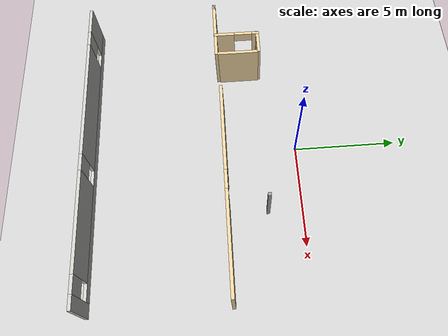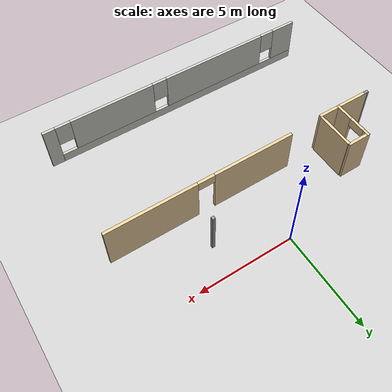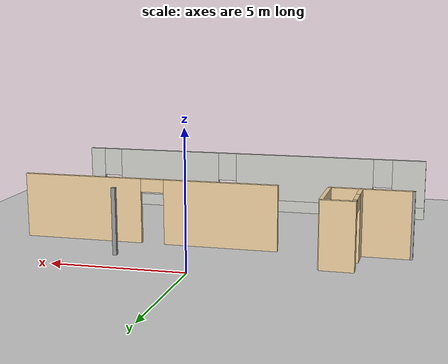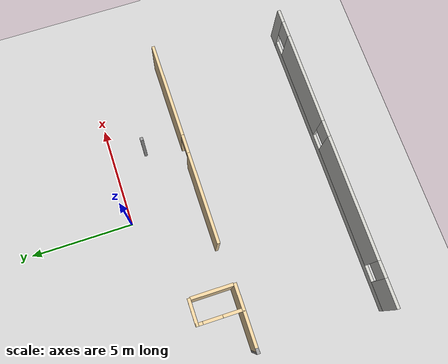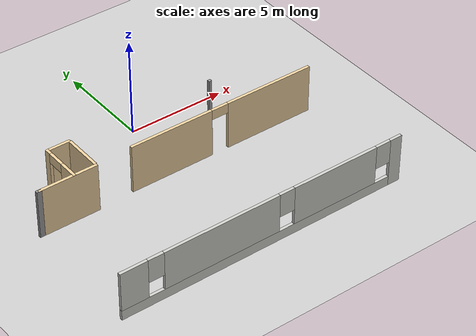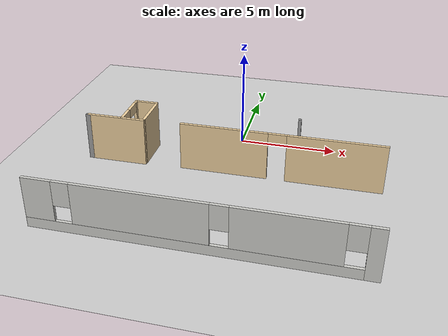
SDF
<sdf version="1.6">
 <world name="default">
  <model name="ground_plane">
   <static>1</static>
   <link name="link">
    <collision name="collision">
     <geometry><plane><normal>0 0 1</normal><size>100 100</size></plane></geometry>
     <surface>
      <contact><collide_bitmask>65535</collide_bitmask></contact>
      <friction><ode><mu>100</mu><mu2>50</mu2></ode></friction>
     </surface>
    </collision>
    <visual name="visual">
     <cast_shadows>0</cast_shadows>
     <geometry><plane><normal>0 0 1</normal><size>100 100</size></plane></geometry>
     <material>
      <script><uri>file://media/materials/scripts/gazebo.material</uri><name>Gazebo/Grey</name></script>
     </material>
    </visual>
   </link>
  </model>
  <model name="AutowayTower">
   <link name="Wall_15">
    <pose>3.50426 2.54039 0 0 -0 1.5708</pose>
    <visual name="Wall_15_Visual_0">
     <pose>-2.8048 0 1.25 0 -0 0</pose>
     <geometry><box><size>4.39039 0.15 2.5</size></box></geometry>
     <material>
      <script><uri>file://media/materials/scripts/gazebo.material</uri><name>Gazebo/Grey</name></script>
      <ambient>0.921569 0.807843 0.615686 1</ambient>
      <shader type="pixel"/>
      <diffuse>0.7 0.7 0.7 1</diffuse>
      <specular>0.01 0.01 0.01 1</specular>
      <emissive>0 0 0 1</emissive>
     </material>
     <meta><layer>0</layer></meta>
    </visual>
    <visual name="Wall_15_Visual_1">
     <pose>2.6452 0 1.25 0 -0 0</pose>
     <geometry><box><size>4.70961 0.15 2.5</size></box></geometry>
     <material>
      <script><uri>file://media/materials/scripts/gazebo.material</uri><name>Gazebo/Grey</name></script>
      <ambient>0.921569 0.807843 0.615686 1</ambient>
      <shader type="pixel"/>
      <diffuse>0.7 0.7 0.7 1</diffuse>
      <specular>0.01 0.01 0.01 1</specular>
      <emissive>0 0 0 1</emissive>
     </material>
     <meta><layer>0</layer></meta>
    </visual>
    <visual name="Wall_15_Visual_2">
     <pose>-0.159607 0 2.25 0 -0 0</pose>
     <geometry><box><size>0.9 0.15 0.5</size></box></geometry>
     <material>
      <script><uri>file://media/materials/scripts/gazebo.material</uri><name>Gazebo/Grey</name></script>
      <ambient>0.921569 0.807843 0.615686 1</ambient>
      <shader type="pixel"/>
      <diffuse>0.7 0.7 0.7 1</diffuse>
      <specular>0.01 0.01 0.01 1</specular>
      <emissive>0 0 0 1</emissive>
     </material>
     <meta><layer>0</layer></meta>
    </visual>
    <collision name="Wall_15_Collision_0">
     <pose>-2.8048 0 1.25 0 -0 0</pose>
     <geometry><box><size>4.39039 0.15 2.5</size></box></geometry>
     <surface>
      <friction>
       <ode><mu>1</mu><mu2>1</mu2><fdir1>0 0 0</fdir1><slip1>0</slip1><slip2>0</slip2></ode>
       <torsional>
        <coefficient>1</coefficient>
        <patch_radius>0</patch_radius>
        <surface_radius>0</surface_radius>
        <use_patch_radius>1</use_patch_radius>
        <ode><slip>0</slip></ode>
       </torsional>
      </friction>
      <bounce><restitution_coefficient>0</restitution_coefficient><threshold>1e+06</threshold></bounce>
      <contact>
       <collide_without_contact>0</collide_without_contact>
       <collide_without_contact_bitmask>1</collide_without_contact_bitmask>
       <collide_bitmask>1</collide_bitmask>
       <ode>
        <soft_cfm>0</soft_cfm>
        <soft_erp>0.2</soft_erp>
        <kp>1e+13</kp>
        <kd>1</kd>
        <max_vel>0.01</max_vel>
        <min_depth>0</min_depth>
       </ode>
       <bullet>
        <split_impulse>1</split_impulse>
        <split_impulse_penetration_threshold>-0.01</split_impulse_penetration_threshold>
        <soft_cfm>0</soft_cfm>
        <soft_erp>0.2</soft_erp>
        <kp>1e+13</kp>
        <kd>1</kd>
       </bullet>
      </contact>
     </surface>
    </collision>
    <collision name="Wall_15_Collision_1">
     <pose>2.6452 0 1.25 0 -0 0</pose>
     <geometry><box><size>4.70961 0.15 2.5</size></box></geometry>
     <surface>
      <friction>
       <ode><mu>1</mu><mu2>1</mu2><fdir1>0 0 0</fdir1><slip1>0</slip1><slip2>0</slip2></ode>
       <torsional>
        <coefficient>1</coefficient>
        <patch_radius>0</patch_radius>
        <surface_radius>0</surface_radius>
        <use_patch_radius>1</use_patch_radius>
        <ode><slip>0</slip></ode>
       </torsional>
      </friction>
      <bounce><restitution_coefficient>0</restitution_coefficient><threshold>1e+06</threshold></bounce>
      <contact>
       <collide_without_contact>0</collide_without_contact>
       <collide_without_contact_bitmask>1</collide_without_contact_bitmask>
       <collide_bitmask>1</collide_bitmask>
       <ode>
        <soft_cfm>0</soft_cfm>
        <soft_erp>0.2</soft_erp>
        <kp>1e+13</kp>
        <kd>1</kd>
        <max_vel>0.01</max_vel>
        <min_depth>0</min_depth>
       </ode>
       <bullet>
        <split_impulse>1</split_impulse>
        <split_impulse_penetration_threshold>-0.01</split_impulse_penetration_threshold>
        <soft_cfm>0</soft_cfm>
        <soft_erp>0.2</soft_erp>
        <kp>1e+13</kp>
        <kd>1</kd>
       </bullet>
      </contact>
     </surface>
    </collision>
    <collision name="Wall_15_Collision_2">
     <pose>-0.159607 0 2.25 0 -0 0</pose>
     <geometry><box><size>0.9 0.15 0.5</size></box></geometry>
     <surface>
      <friction>
       <ode><mu>1</mu><mu2>1</mu2><fdir1>0 0 0</fdir1><slip1>0</slip1><slip2>0</slip2></ode>
       <torsional>
        <coefficient>1</coefficient>
        <patch_radius>0</patch_radius>
        <surface_radius>0</surface_radius>
        <use_patch_radius>1</use_patch_radius>
        <ode><slip>0</slip></ode>
       </torsional>
      </friction>
      <bounce><restitution_coefficient>0</restitution_coefficient><threshold>1e+06</threshold></bounce>
      <contact>
       <collide_without_contact>0</collide_without_contact>
       <collide_without_contact_bitmask>1</collide_without_contact_bitmask>
       <collide_bitmask>1</collide_bitmask>
       <ode>
        <soft_cfm>0</soft_cfm>
        <soft_erp>0.2</soft_erp>
        <kp>1e+13</kp>
        <kd>1</kd>
        <max_vel>0.01</max_vel>
        <min_depth>0</min_depth>
       </ode>
       <bullet>
        <split_impulse>1</split_impulse>
        <split_impulse_penetration_threshold>-0.01</split_impulse_penetration_threshold>
        <soft_cfm>0</soft_cfm>
        <soft_erp>0.2</soft_erp>
        <kp>1e+13</kp>
        <kd>1</kd>
       </bullet>
      </contact>
     </surface>
    </collision>
   </link>
   <link name="Wall_2">
    <pose>9.93714 0.003689 0 0 0 -1.5708</pose>
    <visual name="Wall_2_Visual_0">
     <pose>-7.17614 0 1.25 0 -0 0</pose>
     <geometry><box><size>0.647727 0.15 2.5</size></box></geometry>
     <material>
      <script><uri>file://media/materials/scripts/gazebo.material</uri><name>Gazebo/CeilingTiled</name></script>
      <ambient>1 1 1 1</ambient>
      <shader type="pixel"/>
      <diffuse>1 1 1 1</diffuse>
      <specular>0 0 0 1</specular>
      <emissive>0 0 0 1</emissive>
     </material>
     <meta><layer>0</layer></meta>
    </visual>
    <visual name="Wall_2_Visual_1">
     <pose>0.323864 0 0.25 0 -0 0</pose>
     <geometry><box><size>14.3523 0.15 0.5</size></box></geometry>
     <material>
      <script><uri>file://media/materials/scripts/gazebo.material</uri><name>Gazebo/CeilingTiled</name></script>
      <ambient>1 1 1 1</ambient>
      <shader type="pixel"/>
      <diffuse>1 1 1 1</diffuse>
      <specular>0 0 0 1</specular>
      <emissive>0 0 0 1</emissive>
     </material>
     <meta><layer>0</layer></meta>
    </visual>
    <visual name="Wall_2_Visual_2">
     <pose>-3.76755 0 1.5 0 -0 0</pose>
     <geometry><box><size>4.56945 0.15 2</size></box></geometry>
     <material>
      <script><uri>file://media/materials/scripts/gazebo.material</uri><name>Gazebo/CeilingTiled</name></script>
      <ambient>1 1 1 1</ambient>
      <shader type="pixel"/>
      <diffuse>1 1 1 1</diffuse>
      <specular>0 0 0 1</specular>
      <emissive>0 0 0 1</emissive>
     </material>
     <meta><layer>0</layer></meta>
    </visual>
    <visual name="Wall_2_Visual_3">
     <pose>2.31899 0 1.5 0 -0 0</pose>
     <geometry><box><size>6.00363 0.15 2</size></box></geometry>
     <material>
      <script><uri>file://media/materials/scripts/gazebo.material</uri><name>Gazebo/CeilingTiled</name></script>
      <ambient>1 1 1 1</ambient>
      <shader type="pixel"/>
      <diffuse>1 1 1 1</diffuse>
      <specular>0 0 0 1</specular>
      <emissive>0 0 0 1</emissive>
     </material>
     <meta><layer>0</layer></meta>
    </visual>
    <visual name="Wall_2_Visual_4">
     <pose>6.81041 0 1.5 0 -0 0</pose>
     <geometry><box><size>1.37919 0.15 2</size></box></geometry>
     <material>
      <script><uri>file://media/materials/scripts/gazebo.material</uri><name>Gazebo/CeilingTiled</name></script>
      <ambient>1 1 1 1</ambient>
      <shader type="pixel"/>
      <diffuse>1 1 1 1</diffuse>
      <specular>0 0 0 1</specular>
      <emissive>0 0 0 1</emissive>
     </material>
     <meta><layer>0</layer></meta>
    </visual>
    <visual name="Wall_2_Visual_5">
     <pose>-6.45227 0 1.9 0 -0 0</pose>
     <geometry><box><size>0.8 0.15 1.2</size></box></geometry>
     <material>
      <script><uri>file://media/materials/scripts/gazebo.material</uri><name>Gazebo/CeilingTiled</name></script>
      <ambient>1 1 1 1</ambient>
      <shader type="pixel"/>
      <diffuse>1 1 1 1</diffuse>
      <specular>0 0 0 1</specular>
      <emissive>0 0 0 1</emissive>
     </material>
     <meta><layer>0</layer></meta>
    </visual>
    <visual name="Wall_2_Visual_6">
     <pose>-1.08282 0 1.9 0 -0 0</pose>
     <geometry><box><size>0.8 0.15 1.2</size></box></geometry>
     <material>
      <script><uri>file://media/materials/scripts/gazebo.material</uri><name>Gazebo/CeilingTiled</name></script>
      <ambient>1 1 1 1</ambient>
      <shader type="pixel"/>
      <diffuse>1 1 1 1</diffuse>
      <specular>0 0 0 1</specular>
      <emissive>0 0 0 1</emissive>
     </material>
     <meta><layer>0</layer></meta>
    </visual>
    <visual name="Wall_2_Visual_7">
     <pose>5.72081 0 1.9 0 -0 0</pose>
     <geometry><box><size>0.8 0.15 1.2</size></box></geometry>
     <material>
      <script><uri>file://media/materials/scripts/gazebo.material</uri><name>Gazebo/CeilingTiled</name></script>
      <ambient>1 1 1 1</ambient>
      <shader type="pixel"/>
      <diffuse>1 1 1 1</diffuse>
      <specular>0 0 0 1</specular>
      <emissive>0 0 0 1</emissive>
     </material>
     <meta><layer>0</layer></meta>
    </visual>
    <collision name="Wall_2_Collision_0">
     <pose>-7.17614 0 1.25 0 -0 0</pose>
     <geometry><box><size>0.647727 0.15 2.5</size></box></geometry>
     <surface>
      <friction>
       <ode><mu>1</mu><mu2>1</mu2><fdir1>0 0 0</fdir1><slip1>0</slip1><slip2>0</slip2></ode>
       <torsional>
        <coefficient>1</coefficient>
        <patch_radius>0</patch_radius>
        <surface_radius>0</surface_radius>
        <use_patch_radius>1</use_patch_radius>
        <ode><slip>0</slip></ode>
       </torsional>
      </friction>
      <bounce><restitution_coefficient>0</restitution_coefficient><threshold>1e+06</threshold></bounce>
      <contact>
       <collide_without_contact>0</collide_without_contact>
       <collide_without_contact_bitmask>1</collide_without_contact_bitmask>
       <collide_bitmask>1</collide_bitmask>
       <ode>
        <soft_cfm>0</soft_cfm>
        <soft_erp>0.2</soft_erp>
        <kp>1e+13</kp>
        <kd>1</kd>
        <max_vel>0.01</max_vel>
        <min_depth>0</min_depth>
       </ode>
       <bullet>
        <split_impulse>1</split_impulse>
        <split_impulse_penetration_threshold>-0.01</split_impulse_penetration_threshold>
        <soft_cfm>0</soft_cfm>
        <soft_erp>0.2</soft_erp>
        <kp>1e+13</kp>
        <kd>1</kd>
       </bullet>
      </contact>
     </surface>
    </collision>
    <collision name="Wall_2_Collision_1">
     <pose>0.323864 0 0.25 0 -0 0</pose>
     <geometry><box><size>14.3523 0.15 0.5</size></box></geometry>
     <surface>
      <friction>
       <ode><mu>1</mu><mu2>1</mu2><fdir1>0 0 0</fdir1><slip1>0</slip1><slip2>0</slip2></ode>
       <torsional>
        <coefficient>1</coefficient>
        <patch_radius>0</patch_radius>
        <surface_radius>0</surface_radius>
        <use_patch_radius>1</use_patch_radius>
        <ode><slip>0</slip></ode>
       </torsional>
      </friction>
      <bounce><restitution_coefficient>0</restitution_coefficient><threshold>1e+06</threshold></bounce>
      <contact>
       <collide_without_contact>0</collide_without_contact>
       <collide_without_contact_bitmask>1</collide_without_contact_bitmask>
       <collide_bitmask>1</collide_bitmask>
       <ode>
        <soft_cfm>0</soft_cfm>
        <soft_erp>0.2</soft_erp>
        <kp>1e+13</kp>
        <kd>1</kd>
        <max_vel>0.01</max_vel>
        <min_depth>0</min_depth>
       </ode>
       <bullet>
        <split_impulse>1</split_impulse>
        <split_impulse_penetration_threshold>-0.01</split_impulse_penetration_threshold>
        <soft_cfm>0</soft_cfm>
        <soft_erp>0.2</soft_erp>
        <kp>1e+13</kp>
        <kd>1</kd>
       </bullet>
      </contact>
     </surface>
    </collision>
    <collision name="Wall_2_Collision_2">
     <pose>-3.76755 0 1.5 0 -0 0</pose>
     <geometry><box><size>4.56945 0.15 2</size></box></geometry>
     <surface>
      <friction>
       <ode><mu>1</mu><mu2>1</mu2><fdir1>0 0 0</fdir1><slip1>0</slip1><slip2>0</slip2></ode>
       <torsional>
        <coefficient>1</coefficient>
        <patch_radius>0</patch_radius>
        <surface_radius>0</surface_radius>
        <use_patch_radius>1</use_patch_radius>
        <ode><slip>0</slip></ode>
       </torsional>
      </friction>
      <bounce><restitution_coefficient>0</restitution_coefficient><threshold>1e+06</threshold></bounce>
      <contact>
       <collide_without_contact>0</collide_without_contact>
       <collide_without_contact_bitmask>1</collide_without_contact_bitmask>
       <collide_bitmask>1</collide_bitmask>
       <ode>
        <soft_cfm>0</soft_cfm>
        <soft_erp>0.2</soft_erp>
        <kp>1e+13</kp>
        <kd>1</kd>
        <max_vel>0.01</max_vel>
        <min_depth>0</min_depth>
       </ode>
       <bullet>
        <split_impulse>1</split_impulse>
        <split_impulse_penetration_threshold>-0.01</split_impulse_penetration_threshold>
        <soft_cfm>0</soft_cfm>
        <soft_erp>0.2</soft_erp>
        <kp>1e+13</kp>
        <kd>1</kd>
       </bullet>
      </contact>
     </surface>
    </collision>
    <collision name="Wall_2_Collision_3">
     <pose>2.31899 0 1.5 0 -0 0</pose>
     <geometry><box><size>6.00363 0.15 2</size></box></geometry>
     <surface>
      <friction>
       <ode><mu>1</mu><mu2>1</mu2><fdir1>0 0 0</fdir1><slip1>0</slip1><slip2>0</slip2></ode>
       <torsional>
        <coefficient>1</coefficient>
        <patch_radius>0</patch_radius>
        <surface_radius>0</surface_radius>
        <use_patch_radius>1</use_patch_radius>
        <ode><slip>0</slip></ode>
       </torsional>
      </friction>
      <bounce><restitution_coefficient>0</restitution_coefficient><threshold>1e+06</threshold></bounce>
      <contact>
       <collide_without_contact>0</collide_without_contact>
       <collide_without_contact_bitmask>1</collide_without_contact_bitmask>
       <collide_bitmask>1</collide_bitmask>
       <ode>
        <soft_cfm>0</soft_cfm>
        <soft_erp>0.2</soft_erp>
        <kp>1e+13</kp>
        <kd>1</kd>
        <max_vel>0.01</max_vel>
        <min_depth>0</min_depth>
       </ode>
       <bullet>
        <split_impulse>1</split_impulse>
        <split_impulse_penetration_threshold>-0.01</split_impulse_penetration_threshold>
        <soft_cfm>0</soft_cfm>
        <soft_erp>0.2</soft_erp>
        <kp>1e+13</kp>
        <kd>1</kd>
       </bullet>
      </contact>
     </surface>
    </collision>
    <collision name="Wall_2_Collision_4">
     <pose>6.81041 0 1.5 0 -0 0</pose>
     <geometry><box><size>1.37919 0.15 2</size></box></geometry>
     <surface>
      <friction>
       <ode><mu>1</mu><mu2>1</mu2><fdir1>0 0 0</fdir1><slip1>0</slip1><slip2>0</slip2></ode>
       <torsional>
        <coefficient>1</coefficient>
        <patch_radius>0</patch_radius>
        <surface_radius>0</surface_radius>
        <use_patch_radius>1</use_patch_radius>
        <ode><slip>0</slip></ode>
       </torsional>
      </friction>
      <bounce><restitution_coefficient>0</restitution_coefficient><threshold>1e+06</threshold></bounce>
      <contact>
       <collide_without_contact>0</collide_without_contact>
       <collide_without_contact_bitmask>1</collide_without_contact_bitmask>
       <collide_bitmask>1</collide_bitmask>
       <ode>
        <soft_cfm>0</soft_cfm>
        <soft_erp>0.2</soft_erp>
        <kp>1e+13</kp>
        <kd>1</kd>
        <max_vel>0.01</max_vel>
        <min_depth>0</min_depth>
       </ode>
       <bullet>
        <split_impulse>1</split_impulse>
        <split_impulse_penetration_threshold>-0.01</split_impulse_penetration_threshold>
        <soft_cfm>0</soft_cfm>
        <soft_erp>0.2</soft_erp>
        <kp>1e+13</kp>
        <kd>1</kd>
       </bullet>
      </contact>
     </surface>
    </collision>
    <collision name="Wall_2_Collision_5">
     <pose>-6.45227 0 1.9 0 -0 0</pose>
     <geometry><box><size>0.8 0.15 1.2</size></box></geometry>
     <surface>
      <friction>
       <ode><mu>1</mu><mu2>1</mu2><fdir1>0 0 0</fdir1><slip1>0</slip1><slip2>0</slip2></ode>
       <torsional>
        <coefficient>1</coefficient>
        <patch_radius>0</patch_radius>
        <surface_radius>0</surface_radius>
        <use_patch_radius>1</use_patch_radius>
        <ode><slip>0</slip></ode>
       </torsional>
      </friction>
      <bounce><restitution_coefficient>0</restitution_coefficient><threshold>1e+06</threshold></bounce>
      <contact>
       <collide_without_contact>0</collide_without_contact>
       <collide_without_contact_bitmask>1</collide_without_contact_bitmask>
       <collide_bitmask>1</collide_bitmask>
       <ode>
        <soft_cfm>0</soft_cfm>
        <soft_erp>0.2</soft_erp>
        <kp>1e+13</kp>
        <kd>1</kd>
        <max_vel>0.01</max_vel>
        <min_depth>0</min_depth>
       </ode>
       <bullet>
        <split_impulse>1</split_impulse>
        <split_impulse_penetration_threshold>-0.01</split_impulse_penetration_threshold>
        <soft_cfm>0</soft_cfm>
        <soft_erp>0.2</soft_erp>
        <kp>1e+13</kp>
        <kd>1</kd>
       </bullet>
      </contact>
     </surface>
    </collision>
    <collision name="Wall_2_Collision_6">
     <pose>-1.08282 0 1.9 0 -0 0</pose>
     <geometry><box><size>0.8 0.15 1.2</size></box></geometry>
     <surface>
      <friction>
       <ode><mu>1</mu><mu2>1</mu2><fdir1>0 0 0</fdir1><slip1>0</slip1><slip2>0</slip2></ode>
       <torsional>
        <coefficient>1</coefficient>
        <patch_radius>0</patch_radius>
        <surface_radius>0</surface_radius>
        <use_patch_radius>1</use_patch_radius>
        <ode><slip>0</slip></ode>
       </torsional>
      </friction>
      <bounce><restitution_coefficient>0</restitution_coefficient><threshold>1e+06</threshold></bounce>
      <contact>
       <collide_without_contact>0</collide_without_contact>
       <collide_without_contact_bitmask>1</collide_without_contact_bitmask>
       <collide_bitmask>1</collide_bitmask>
       <ode>
        <soft_cfm>0</soft_cfm>
        <soft_erp>0.2</soft_erp>
        <kp>1e+13</kp>
        <kd>1</kd>
        <max_vel>0.01</max_vel>
        <min_depth>0</min_depth>
       </ode>
       <bullet>
        <split_impulse>1</split_impulse>
        <split_impulse_penetration_threshold>-0.01</split_impulse_penetration_threshold>
        <soft_cfm>0</soft_cfm>
        <soft_erp>0.2</soft_erp>
        <kp>1e+13</kp>
        <kd>1</kd>
       </bullet>
      </contact>
     </surface>
    </collision>
    <collision name="Wall_2_Collision_7">
     <pose>5.72081 0 1.9 0 -0 0</pose>
     <geometry><box><size>0.8 0.15 1.2</size></box></geometry>
     <surface>
      <friction>
       <ode><mu>1</mu><mu2>1</mu2><fdir1>0 0 0</fdir1><slip1>0</slip1><slip2>0</slip2></ode>
       <torsional>
        <coefficient>1</coefficient>
        <patch_radius>0</patch_radius>
        <surface_radius>0</surface_radius>
        <use_patch_radius>1</use_patch_radius>
        <ode><slip>0</slip></ode>
       </torsional>
      </friction>
      <bounce><restitution_coefficient>0</restitution_coefficient><threshold>1e+06</threshold></bounce>
      <contact>
       <collide_without_contact>0</collide_without_contact>
       <collide_without_contact_bitmask>1</collide_without_contact_bitmask>
       <collide_bitmask>1</collide_bitmask>
       <ode>
        <soft_cfm>0</soft_cfm>
        <soft_erp>0.2</soft_erp>
        <kp>1e+13</kp>
        <kd>1</kd>
        <max_vel>0.01</max_vel>
        <min_depth>0</min_depth>
       </ode>
       <bullet>
        <split_impulse>1</split_impulse>
        <split_impulse_penetration_threshold>-0.01</split_impulse_penetration_threshold>
        <soft_cfm>0</soft_cfm>
        <soft_erp>0.2</soft_erp>
        <kp>1e+13</kp>
        <kd>1</kd>
       </bullet>
      </contact>
     </surface>
    </collision>
   </link>
   <link name="Wall_37">
    <pose>1.64681 3.22085 0 0 -0 0</pose>
    <visual name="Wall_37_Visual">
     <pose>0 0 1.25 0 -0 0</pose>
     <geometry><box><size>0.15 0.15 2.5</size></box></geometry>
     <material>
      <script><uri>file://media/materials/scripts/gazebo.material</uri><name>Gazebo/Grey</name></script>
      <ambient>1 1 1 1</ambient>
      <shader type="pixel"/>
      <diffuse>0.7 0.7 0.7 1</diffuse>
      <specular>0.01 0.01 0.01 1</specular>
      <emissive>0 0 0 1</emissive>
     </material>
     <meta><layer>0</layer></meta>
    </visual>
    <collision name="Wall_37_Collision">
     <pose>0 0 1.25 0 -0 0</pose>
     <geometry><box><size>0.15 0.15 2.5</size></box></geometry>
     <surface>
      <friction>
       <ode><mu>1</mu><mu2>1</mu2><fdir1>0 0 0</fdir1><slip1>0</slip1><slip2>0</slip2></ode>
       <torsional>
        <coefficient>1</coefficient>
        <patch_radius>0</patch_radius>
        <surface_radius>0</surface_radius>
        <use_patch_radius>1</use_patch_radius>
        <ode><slip>0</slip></ode>
       </torsional>
      </friction>
      <bounce><restitution_coefficient>0</restitution_coefficient><threshold>1e+06</threshold></bounce>
      <contact>
       <collide_without_contact>0</collide_without_contact>
       <collide_without_contact_bitmask>1</collide_without_contact_bitmask>
       <collide_bitmask>1</collide_bitmask>
       <ode>
        <soft_cfm>0</soft_cfm>
        <soft_erp>0.2</soft_erp>
        <kp>1e+13</kp>
        <kd>1</kd>
        <max_vel>0.01</max_vel>
        <min_depth>0</min_depth>
       </ode>
       <bullet>
        <split_impulse>1</split_impulse>
        <split_impulse_penetration_threshold>-0.01</split_impulse_penetration_threshold>
        <soft_cfm>0</soft_cfm>
        <soft_erp>0.2</soft_erp>
        <kp>1e+13</kp>
        <kd>1</kd>
       </bullet>
      </contact>
     </surface>
    </collision>
   </link>
   <link name="Wall_38">
    <pose>1.64681 3.22085 0 0 -0 0</pose>
    <visual name="Wall_38_Visual">
     <pose>0 0 1.25 0 -0 0</pose>
     <geometry><box><size>0.15 0.15 2.5</size></box></geometry>
     <material>
      <script><uri>file://media/materials/scripts/gazebo.material</uri><name>Gazebo/Grey</name></script>
      <ambient>1 1 1 1</ambient>
      <shader type="pixel"/>
      <diffuse>0.7 0.7 0.7 1</diffuse>
      <specular>0.01 0.01 0.01 1</specular>
      <emissive>0 0 0 1</emissive>
     </material>
     <meta><layer>0</layer></meta>
    </visual>
    <collision name="Wall_38_Collision">
     <pose>0 0 1.25 0 -0 0</pose>
     <geometry><box><size>0.15 0.15 2.5</size></box></geometry>
     <surface>
      <friction>
       <ode><mu>1</mu><mu2>1</mu2><fdir1>0 0 0</fdir1><slip1>0</slip1><slip2>0</slip2></ode>
       <torsional>
        <coefficient>1</coefficient>
        <patch_radius>0</patch_radius>
        <surface_radius>0</surface_radius>
        <use_patch_radius>1</use_patch_radius>
        <ode><slip>0</slip></ode>
       </torsional>
      </friction>
      <bounce><restitution_coefficient>0</restitution_coefficient><threshold>1e+06</threshold></bounce>
      <contact>
       <collide_without_contact>0</collide_without_contact>
       <collide_without_contact_bitmask>1</collide_without_contact_bitmask>
       <collide_bitmask>1</collide_bitmask>
       <ode>
        <soft_cfm>0</soft_cfm>
        <soft_erp>0.2</soft_erp>
        <kp>1e+13</kp>
        <kd>1</kd>
        <max_vel>0.01</max_vel>
        <min_depth>0</min_depth>
       </ode>
       <bullet>
        <split_impulse>1</split_impulse>
        <split_impulse_penetration_threshold>-0.01</split_impulse_penetration_threshold>
        <soft_cfm>0</soft_cfm>
        <soft_erp>0.2</soft_erp>
        <kp>1e+13</kp>
        <kd>1</kd>
       </bullet>
      </contact>
     </surface>
    </collision>
   </link>
   <link name="Wall_58_clone_0">
    <pose>2.55041 -4.3308 0 0 -0 3.1408</pose>
    <inertial>
     <mass>1</mass>
     <inertia><ixx>1</ixx><ixy>0</ixy><ixz>0</ixz><iyy>1</iyy><iyz>0</iyz><izz>1</izz></inertia>
    </inertial>
    <visual name="Wall_58_Visual">
     <pose>0 0 1.25 0 -0 0</pose>
     <geometry><box><size>2 0.15 2.5</size></box></geometry>
     <material>
      <script><uri>file://media/materials/scripts/gazebo.material</uri><name>Gazebo/Grey</name></script>
      <ambient>0.922 0.808 0.616 1</ambient>
      <shader type="pixel"><normal_map>__default__</normal_map></shader>
      <diffuse>0.7 0.7 0.7 1</diffuse>
      <specular>0.01 0.01 0.01 1</specular>
      <emissive>0 0 0 1</emissive>
     </material>
     <meta><layer>0</layer></meta>
    </visual>
    <collision name="Wall_58_Collision">
     <pose>0 0 1.25 0 -0 0</pose>
     <geometry><box><size>2 0.15 2.5</size></box></geometry>
     <surface>
      <friction>
       <ode><mu>1</mu><mu2>1</mu2><fdir1>0 0 0</fdir1><slip1>0</slip1><slip2>0</slip2></ode>
       <torsional>
        <coefficient>1</coefficient>
        <patch_radius>0</patch_radius>
        <surface_radius>0</surface_radius>
        <use_patch_radius>1</use_patch_radius>
        <ode><slip>0</slip></ode>
       </torsional>
      </friction>
      <bounce><restitution_coefficient>0</restitution_coefficient><threshold>1e+06</threshold></bounce>
      <contact>
       <collide_without_contact>0</collide_without_contact>
       <collide_without_contact_bitmask>1</collide_without_contact_bitmask>
       <collide_bitmask>1</collide_bitmask>
       <ode>
        <soft_cfm>0</soft_cfm>
        <soft_erp>0.2</soft_erp>
        <kp>1e+13</kp>
        <kd>1</kd>
        <max_vel>0.01</max_vel>
        <min_depth>0</min_depth>
       </ode>
       <bullet>
        <split_impulse>1</split_impulse>
        <split_impulse_penetration_threshold>-0.01</split_impulse_penetration_threshold>
        <soft_cfm>0</soft_cfm>
        <soft_erp>0.2</soft_erp>
        <kp>1e+13</kp>
        <kd>1</kd>
       </bullet>
      </contact>
     </surface>
    </collision>
   </link>
   <link name="Wall_60">
    <pose>3.6249 -5.79113 0 0 0 -1.5708</pose>
    <visual name="Wall_60_Visual">
     <pose>0 0 1.25 0 -0 0</pose>
     <geometry><box><size>3 0.15 2.5</size></box></geometry>
     <material>
      <script><uri>file://media/materials/scripts/gazebo.material</uri><name>Gazebo/Grey</name></script>
      <ambient>0.921569 0.807843 0.615686 1</ambient>
      <shader type="pixel"/>
      <diffuse>0.7 0.7 0.7 1</diffuse>
      <specular>0.01 0.01 0.01 1</specular>
      <emissive>0 0 0 1</emissive>
     </material>
     <meta><layer>0</layer></meta>
    </visual>
    <collision name="Wall_60_Collision">
     <pose>0 0 1.25 0 -0 0</pose>
     <geometry><box><size>3 0.15 2.5</size></box></geometry>
     <surface>
      <friction>
       <ode><mu>1</mu><mu2>1</mu2><fdir1>0 0 0</fdir1><slip1>0</slip1><slip2>0</slip2></ode>
       <torsional>
        <coefficient>1</coefficient>
        <patch_radius>0</patch_radius>
        <surface_radius>0</surface_radius>
        <use_patch_radius>1</use_patch_radius>
        <ode><slip>0</slip></ode>
       </torsional>
      </friction>
      <bounce><restitution_coefficient>0</restitution_coefficient><threshold>1e+06</threshold></bounce>
      <contact>
       <collide_without_contact>0</collide_without_contact>
       <collide_without_contact_bitmask>1</collide_without_contact_bitmask>
       <collide_bitmask>1</collide_bitmask>
       <ode>
        <soft_cfm>0</soft_cfm>
        <soft_erp>0.2</soft_erp>
        <kp>1e+13</kp>
        <kd>1</kd>
        <max_vel>0.01</max_vel>
        <min_depth>0</min_depth>
       </ode>
       <bullet>
        <split_impulse>1</split_impulse>
        <split_impulse_penetration_threshold>-0.01</split_impulse_penetration_threshold>
        <soft_cfm>0</soft_cfm>
        <soft_erp>0.2</soft_erp>
        <kp>1e+13</kp>
        <kd>1</kd>
       </bullet>
      </contact>
     </surface>
    </collision>
   </link>
   <link name="Wall_61">
    <pose>3.6249 -7.26613 0 0 0 -1.5708</pose>
    <visual name="Wall_61_Visual">
     <pose>0 0 1.25 0 -0 0</pose>
     <geometry><box><size>0.25 0.15 2.5</size></box></geometry>
     <material>
      <script><uri>file://media/materials/scripts/gazebo.material</uri><name>Gazebo/Grey</name></script>
      <ambient>1 1 1 1</ambient>
      <shader type="pixel"/>
      <diffuse>0.7 0.7 0.7 1</diffuse>
      <specular>0.01 0.01 0.01 1</specular>
      <emissive>0 0 0 1</emissive>
     </material>
     <meta><layer>0</layer></meta>
    </visual>
    <collision name="Wall_61_Collision">
     <pose>0 0 1.25 0 -0 0</pose>
     <geometry><box><size>0.25 0.15 2.5</size></box></geometry>
     <surface>
      <friction>
       <ode><mu>1</mu><mu2>1</mu2><fdir1>0 0 0</fdir1><slip1>0</slip1><slip2>0</slip2></ode>
       <torsional>
        <coefficient>1</coefficient>
        <patch_radius>0</patch_radius>
        <surface_radius>0</surface_radius>
        <use_patch_radius>1</use_patch_radius>
        <ode><slip>0</slip></ode>
       </torsional>
      </friction>
      <bounce><restitution_coefficient>0</restitution_coefficient><threshold>1e+06</threshold></bounce>
      <contact>
       <collide_without_contact>0</collide_without_contact>
       <collide_without_contact_bitmask>1</collide_without_contact_bitmask>
       <collide_bitmask>1</collide_bitmask>
       <ode>
        <soft_cfm>0</soft_cfm>
        <soft_erp>0.2</soft_erp>
        <kp>1e+13</kp>
        <kd>1</kd>
        <max_vel>0.01</max_vel>
        <min_depth>0</min_depth>
       </ode>
       <bullet>
        <split_impulse>1</split_impulse>
        <split_impulse_penetration_threshold>-0.01</split_impulse_penetration_threshold>
        <soft_cfm>0</soft_cfm>
        <soft_erp>0.2</soft_erp>
        <kp>1e+13</kp>
        <kd>1</kd>
       </bullet>
      </contact>
     </surface>
    </collision>
   </link>
   <link name="Wall_67">
    <pose>1.51885 -4.92039 0 0 0 -1.5708</pose>
    <visual name="Wall_67_Visual">
     <pose>0 0 1.25 0 -0 0</pose>
     <geometry><box><size>1.25 0.15 2.5</size></box></geometry>
     <material>
      <script><uri>file://media/materials/scripts/gazebo.material</uri><name>Gazebo/Grey</name></script>
      <ambient>0.921569 0.807843 0.615686 1</ambient>
      <shader type="pixel"/>
      <diffuse>0.7 0.7 0.7 1</diffuse>
      <specular>0.01 0.01 0.01 1</specular>
      <emissive>0 0 0 1</emissive>
     </material>
     <meta><layer>0</layer></meta>
    </visual>
    <collision name="Wall_67_Collision">
     <pose>0 0 1.25 0 -0 0</pose>
     <geometry><box><size>1.25 0.15 2.5</size></box></geometry>
     <surface>
      <friction>
       <ode><mu>1</mu><mu2>1</mu2><fdir1>0 0 0</fdir1><slip1>0</slip1><slip2>0</slip2></ode>
       <torsional>
        <coefficient>1</coefficient>
        <patch_radius>0</patch_radius>
        <surface_radius>0</surface_radius>
        <use_patch_radius>1</use_patch_radius>
        <ode><slip>0</slip></ode>
       </torsional>
      </friction>
      <bounce><restitution_coefficient>0</restitution_coefficient><threshold>1e+06</threshold></bounce>
      <contact>
       <collide_without_contact>0</collide_without_contact>
       <collide_without_contact_bitmask>1</collide_without_contact_bitmask>
       <collide_bitmask>1</collide_bitmask>
       <ode>
        <soft_cfm>0</soft_cfm>
        <soft_erp>0.2</soft_erp>
        <kp>1e+13</kp>
        <kd>1</kd>
        <max_vel>0.01</max_vel>
        <min_depth>0</min_depth>
       </ode>
       <bullet>
        <split_impulse>1</split_impulse>
        <split_impulse_penetration_threshold>-0.01</split_impulse_penetration_threshold>
        <soft_cfm>0</soft_cfm>
        <soft_erp>0.2</soft_erp>
        <kp>1e+13</kp>
        <kd>1</kd>
       </bullet>
      </contact>
     </surface>
    </collision>
   </link>
   <link name="Wall_68">
    <pose>2.56885 -5.47039 0 0 -0 0</pose>
    <inertial>
     <mass>1</mass>
     <inertia><ixx>1</ixx><ixy>0</ixy><ixz>0</ixz><iyy>1</iyy><iyz>0</iyz><izz>1</izz></inertia>
    </inertial>
    <visual name="Wall_68_Visual_0">
     <pose>-0.953954 0 1.25 0 -0 0</pose>
     <geometry><box><size>0.342093 0.15 2.5</size></box></geometry>
     <material>
      <script><uri>file://media/materials/scripts/gazebo.material</uri><name>Gazebo/Grey</name></script>
      <ambient>0.922 0.808 0.616 1</ambient>
      <shader type="pixel"><normal_map>__default__</normal_map></shader>
      <diffuse>0.7 0.7 0.7 1</diffuse>
      <specular>0.01 0.01 0.01 1</specular>
      <emissive>0 0 0 1</emissive>
     </material>
     <meta><layer>0</layer></meta>
    </visual>
    <visual name="Wall_68_Visual_1">
     <pose>0.621046 0 1.25 0 -0 0</pose>
     <geometry><box><size>1.00791 0.15 2.5</size></box></geometry>
     <material>
      <script><uri>file://media/materials/scripts/gazebo.material</uri><name>Gazebo/Grey</name></script>
      <ambient>0.922 0.808 0.616 1</ambient>
      <shader type="pixel"><normal_map>__default__</normal_map></shader>
      <diffuse>0.7 0.7 0.7 1</diffuse>
      <specular>0.01 0.01 0.01 1</specular>
      <emissive>0 0 0 1</emissive>
     </material>
     <meta><layer>0</layer></meta>
    </visual>
    <visual name="Wall_68_Visual_2">
     <pose>-0.332907 0 2.25 0 -0 0</pose>
     <geometry><box><size>0.9 0.15 0.5</size></box></geometry>
     <material>
      <script><uri>file://media/materials/scripts/gazebo.material</uri><name>Gazebo/Grey</name></script>
      <ambient>0.922 0.808 0.616 1</ambient>
      <shader type="pixel"><normal_map>__default__</normal_map></shader>
      <diffuse>0.7 0.7 0.7 1</diffuse>
      <specular>0.01 0.01 0.01 1</specular>
      <emissive>0 0 0 1</emissive>
     </material>
     <meta><layer>0</layer></meta>
    </visual>
    <collision name="Wall_68_Collision_0">
     <pose>-0.953954 0 1.25 0 -0 0</pose>
     <geometry><box><size>0.342093 0.15 2.5</size></box></geometry>
     <surface>
      <friction>
       <ode><mu>1</mu><mu2>1</mu2><fdir1>0 0 0</fdir1><slip1>0</slip1><slip2>0</slip2></ode>
       <torsional>
        <coefficient>1</coefficient>
        <patch_radius>0</patch_radius>
        <surface_radius>0</surface_radius>
        <use_patch_radius>1</use_patch_radius>
        <ode><slip>0</slip></ode>
       </torsional>
      </friction>
      <bounce><restitution_coefficient>0</restitution_coefficient><threshold>1e+06</threshold></bounce>
      <contact>
       <collide_without_contact>0</collide_without_contact>
       <collide_without_contact_bitmask>1</collide_without_contact_bitmask>
       <collide_bitmask>1</collide_bitmask>
       <ode>
        <soft_cfm>0</soft_cfm>
        <soft_erp>0.2</soft_erp>
        <kp>1e+13</kp>
        <kd>1</kd>
        <max_vel>0.01</max_vel>
        <min_depth>0</min_depth>
       </ode>
       <bullet>
        <split_impulse>1</split_impulse>
        <split_impulse_penetration_threshold>-0.01</split_impulse_penetration_threshold>
        <soft_cfm>0</soft_cfm>
        <soft_erp>0.2</soft_erp>
        <kp>1e+13</kp>
        <kd>1</kd>
       </bullet>
      </contact>
     </surface>
    </collision>
    <collision name="Wall_68_Collision_1">
     <pose>0.621046 0 1.25 0 -0 0</pose>
     <geometry><box><size>1.00791 0.15 2.5</size></box></geometry>
     <surface>
      <friction>
       <ode><mu>1</mu><mu2>1</mu2><fdir1>0 0 0</fdir1><slip1>0</slip1><slip2>0</slip2></ode>
       <torsional>
        <coefficient>1</coefficient>
        <patch_radius>0</patch_radius>
        <surface_radius>0</surface_radius>
        <use_patch_radius>1</use_patch_radius>
        <ode><slip>0</slip></ode>
       </torsional>
      </friction>
      <bounce><restitution_coefficient>0</restitution_coefficient><threshold>1e+06</threshold></bounce>
      <contact>
       <collide_without_contact>0</collide_without_contact>
       <collide_without_contact_bitmask>1</collide_without_contact_bitmask>
       <collide_bitmask>1</collide_bitmask>
       <ode>
        <soft_cfm>0</soft_cfm>
        <soft_erp>0.2</soft_erp>
        <kp>1e+13</kp>
        <kd>1</kd>
        <max_vel>0.01</max_vel>
        <min_depth>0</min_depth>
       </ode>
       <bullet>
        <split_impulse>1</split_impulse>
        <split_impulse_penetration_threshold>-0.01</split_impulse_penetration_threshold>
        <soft_cfm>0</soft_cfm>
        <soft_erp>0.2</soft_erp>
        <kp>1e+13</kp>
        <kd>1</kd>
       </bullet>
      </contact>
     </surface>
    </collision>
    <collision name="Wall_68_Collision_2">
     <pose>-0.332907 0 2.25 0 -0 0</pose>
     <geometry><box><size>0.9 0.15 0.5</size></box></geometry>
     <surface>
      <friction>
       <ode><mu>1</mu><mu2>1</mu2><fdir1>0 0 0</fdir1><slip1>0</slip1><slip2>0</slip2></ode>
       <torsional>
        <coefficient>1</coefficient>
        <patch_radius>0</patch_radius>
        <surface_radius>0</surface_radius>
        <use_patch_radius>1</use_patch_radius>
        <ode><slip>0</slip></ode>
       </torsional>
      </friction>
      <bounce><restitution_coefficient>0</restitution_coefficient><threshold>1e+06</threshold></bounce>
      <contact>
       <collide_without_contact>0</collide_without_contact>
       <collide_without_contact_bitmask>1</collide_without_contact_bitmask>
       <collide_bitmask>1</collide_bitmask>
       <ode>
        <soft_cfm>0</soft_cfm>
        <soft_erp>0.2</soft_erp>
        <kp>1e+13</kp>
        <kd>1</kd>
        <max_vel>0.01</max_vel>
        <min_depth>0</min_depth>
       </ode>
       <bullet>
        <split_impulse>1</split_impulse>
        <split_impulse_penetration_threshold>-0.01</split_impulse_penetration_threshold>
        <soft_cfm>0</soft_cfm>
        <soft_erp>0.2</soft_erp>
        <kp>1e+13</kp>
        <kd>1</kd>
       </bullet>
      </contact>
     </surface>
    </collision>
   </link>
   <static>1</static>
   <pose>3e-06 0 0 0 0 -1.57</pose>
  </model>
 </world>
</sdf>
